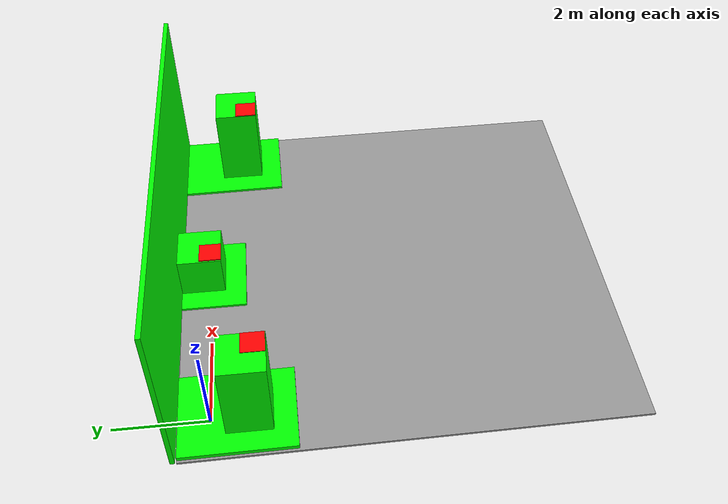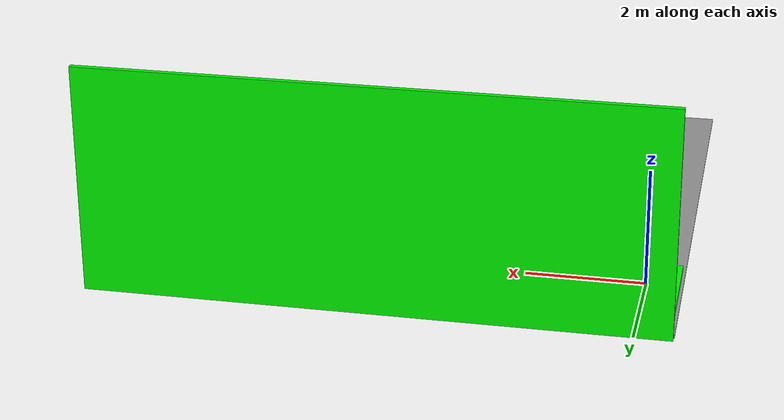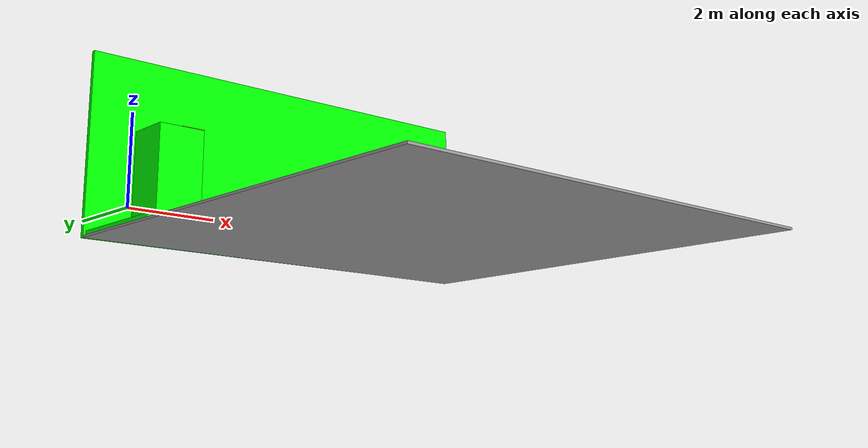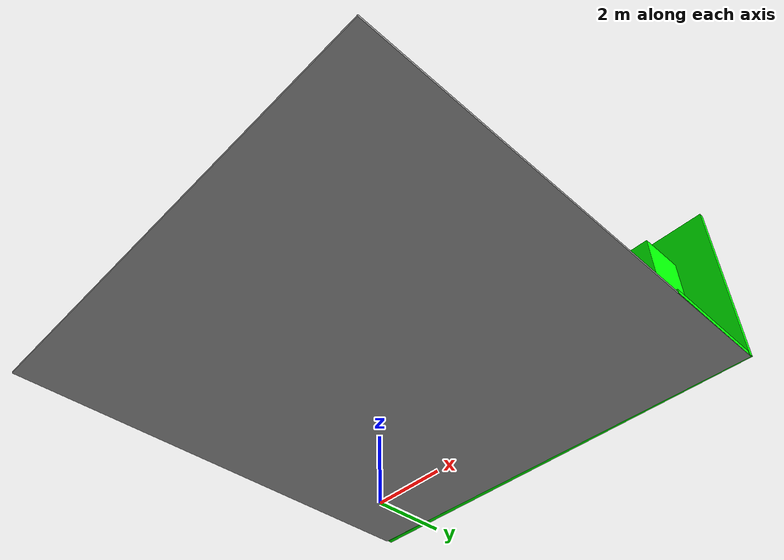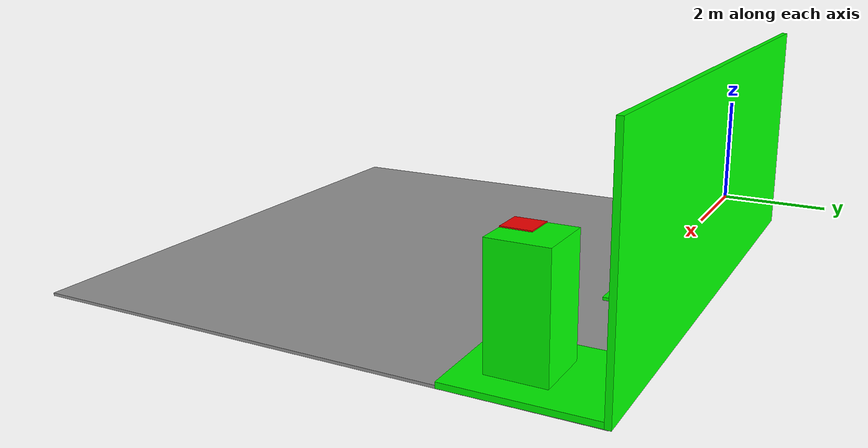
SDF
<?xml version='1.0'?>
<sdf version='1.7'>
  <model name='ABC'>
    <link name='link'>
      <inertial>
        <mass>1</mass>
        <inertia>
          <ixx>0.166667</ixx>
          <ixy>0</ixy>
          <ixz>0</ixz>
          <iyy>0.166667</iyy>
          <iyz>0</iyz>
          <izz>0.166667</izz>
        </inertia>
        <pose>0 0 0 0 -0 0</pose>
      </inertial>
      <self_collide>0</self_collide>
      <enable_wind>0</enable_wind>
      <kinematic>0</kinematic>
      <pose>0.501756 -0.490715 -0.481377 0 -0 0.009708</pose>
      <gravity>0</gravity>
      <visual name='visual'>
        <geometry>
          <box>
            <size>2 2.5 0.1</size>
          </box>
        </geometry>
        <material>
          <script>
            <name>Gazebo/Grey</name>
            <uri>file://media/materials/scripts/gazebo.material</uri>
          </script>
          <shader type='pixel'>
            <normal_map>__default__</normal_map>
          </shader>
          <ambient>0 1 0 1</ambient>
          <diffuse>0 1 0 1</diffuse>
          <specular>0 1 0 1</specular>
          <emissive>0 1 0 1</emissive>
        </material>
        <pose>0 0 0 0 -0 0</pose>
        <transparency>0</transparency>
        <cast_shadows>1</cast_shadows>
      </visual>
    </link>
    <link name='link_clone'>
      <inertial>
        <mass>1</mass>
        <inertia>
          <ixx>0.166667</ixx>
          <ixy>0</ixy>
          <ixz>0</ixz>
          <iyy>0.166667</iyy>
          <iyz>0</iyz>
          <izz>0.166667</izz>
        </inertia>
        <pose>0 0 0 0 -0 0</pose>
      </inertial>
      <self_collide>0</self_collide>
      <enable_wind>0</enable_wind>
      <kinematic>0</kinematic>
      <pose>0.464724 -0.746721 0.530209 0 -0 0</pose>
      <gravity>0</gravity>
      <visual name='visual'>
        <geometry>
          <box>
            <size>1 1 2</size>
          </box>
        </geometry>
        <material>
          <script>
            <name>Gazebo/Grey</name>
            <uri>file://media/materials/scripts/gazebo.material</uri>
          </script>
          <shader type='pixel'>
            <normal_map>__default__</normal_map>
          </shader>
          <ambient>0 1 0 1</ambient>
          <diffuse>0 1 0 1</diffuse>
          <specular>0 1 0 1</specular>
          <emissive>0 1 0 1</emissive>
        </material>
        <pose>0 0 0 0 -0 0</pose>
        <transparency>0</transparency>
        <cast_shadows>1</cast_shadows>
      </visual>
    </link>
    <link name='link_clone_0'>
      <inertial>
        <mass>1</mass>
        <inertia>
          <ixx>0.166667</ixx>
          <ixy>0</ixy>
          <ixz>0</ixz>
          <iyy>0.166667</iyy>
          <iyz>0</iyz>
          <izz>0.166667</izz>
        </inertia>
        <pose>0 0 0 0 -0 0</pose>
      </inertial>
      <self_collide>0</self_collide>
      <enable_wind>0</enable_wind>
      <kinematic>0</kinematic>
      <pose>4.48643 -4.20216 -0.554871 0 -0 0.009708</pose>
      <gravity>0</gravity>
      <visual name='visual'>
        <geometry>
          <box>
            <size>10 10 0.05</size>
          </box>
        </geometry>
        <material>
          <script>
            <name>Gazebo/Grey</name>
            <uri>file://media/materials/scripts/gazebo.material</uri>
          </script>
          <shader type='pixel'>
            <normal_map>__default__</normal_map>
          </shader>
          <ambient>0.3 0.3 0.3 1</ambient>
          <diffuse>0.3 0.3 0.3 1</diffuse>
          <specular>0.3 0.3 0.3 1</specular>
          <emissive>0.3 0.3 0.3 1</emissive>
        </material>
        <pose>0 0 0 0 -0 0</pose>
        <transparency>0</transparency>
        <cast_shadows>1</cast_shadows>
      </visual>
    </link>
    <link name='link_clone_clone'>
      <inertial>
        <mass>1</mass>
        <inertia>
          <ixx>0.166667</ixx>
          <ixy>0</ixy>
          <ixz>0</ixz>
          <iyy>0.166667</iyy>
          <iyz>0</iyz>
          <izz>0.166667</izz>
        </inertia>
        <pose>0 0 0 0 -0 0</pose>
      </inertial>
      <self_collide>0</self_collide>
      <enable_wind>0</enable_wind>
      <kinematic>0</kinematic>
      <pose>4.4894 0.039701 -0.525972 0 0 -3.13825</pose>
      <gravity>0</gravity>
      <visual name='visual'>
        <geometry>
          <box>
            <size>2 1.5 0.1</size>
          </box>
        </geometry>
        <material>
          <script>
            <name>Gazebo/Grey</name>
            <uri>file://media/materials/scripts/gazebo.material</uri>
          </script>
          <shader type='pixel'>
            <normal_map>__default__</normal_map>
          </shader>
          <ambient>0 1 0 1</ambient>
          <diffuse>0 1 0 1</diffuse>
          <specular>0 1 0 1</specular>
          <emissive>0 1 0 1</emissive>
        </material>
        <pose>0 0 0 0 -0 0</pose>
        <transparency>0</transparency>
        <cast_shadows>1</cast_shadows>
      </visual>
    </link>
    <link name='link_clone_clone_0'>
      <inertial>
        <mass>1</mass>
        <inertia>
          <ixx>0.166667</ixx>
          <ixy>0</ixy>
          <ixz>0</ixz>
          <iyy>0.166667</iyy>
          <iyz>0</iyz>
          <izz>0.166667</izz>
        </inertia>
        <pose>0 0 0 0 -0 0</pose>
      </inertial>
      <self_collide>0</self_collide>
      <enable_wind>0</enable_wind>
      <kinematic>0</kinematic>
      <pose>8.45528 -0.414778 -0.521977 0 0 -1.55734</pose>
      <gravity>0</gravity>
      <visual name='visual'>
        <geometry>
          <box>
            <size>2.5 2 0.1</size>
          </box>
        </geometry>
        <material>
          <script>
            <name>Gazebo/Grey</name>
            <uri>file://media/materials/scripts/gazebo.material</uri>
          </script>
          <shader type='pixel'>
            <normal_map>__default__</normal_map>
          </shader>
          <ambient>0 1 0 1</ambient>
          <diffuse>0 1 0 1</diffuse>
          <specular>0 1 0 1</specular>
          <emissive>0 1 0 1</emissive>
        </material>
        <pose>0 0 0 0 -0 0</pose>
        <transparency>0</transparency>
        <cast_shadows>1</cast_shadows>
      </visual>
    </link>
    <link name='link_clone_clone_1'>
      <inertial>
        <mass>1</mass>
        <inertia>
          <ixx>0.166667</ixx>
          <ixy>0</ixy>
          <ixz>0</ixz>
          <iyy>0.166667</iyy>
          <iyz>0</iyz>
          <izz>0.166667</izz>
        </inertia>
        <pose>0 0 0 0 -0 0</pose>
      </inertial>
      <self_collide>0</self_collide>
      <enable_wind>0</enable_wind>
      <kinematic>0</kinematic>
      <pose>4.45058 0.836556 1.43228 0 -0 0</pose>
      <gravity>0</gravity>
      <visual name='visual'>
        <geometry>
          <box>
            <size>10 0.1 4</size>
          </box>
        </geometry>
        <material>
          <script>
            <name>Gazebo/Grey</name>
            <uri>file://media/materials/scripts/gazebo.material</uri>
          </script>
          <shader type='pixel'>
            <normal_map>__default__</normal_map>
          </shader>
          <ambient>0 1 0 1</ambient>
          <diffuse>0 1 0 1</diffuse>
          <specular>0 1 0 1</specular>
          <emissive>0 1 0 1</emissive>
        </material>
        <pose>0 0 0 0 -0 0</pose>
        <transparency>0</transparency>
        <cast_shadows>1</cast_shadows>
      </visual>
    </link>
    <link name='link_clone_clone_2'>
      <inertial>
        <mass>1</mass>
        <inertia>
          <ixx>0.166667</ixx>
          <ixy>0</ixy>
          <ixz>0</ixz>
          <iyy>0.166667</iyy>
          <iyz>0</iyz>
          <izz>0.166667</izz>
        </inertia>
        <pose>0 0 0 0 -0 0</pose>
      </inertial>
      <self_collide>0</self_collide>
      <enable_wind>0</enable_wind>
      <kinematic>0</kinematic>
      <pose>4.46769 0.278083 0.030316 0 -0 0</pose>
      <gravity>0</gravity>
      <visual name='visual'>
        <geometry>
          <box>
            <size>1 1 1</size>
          </box>
        </geometry>
        <material>
          <script>
            <name>Gazebo/Grey</name>
            <uri>file://media/materials/scripts/gazebo.material</uri>
          </script>
          <shader type='pixel'>
            <normal_map>__default__</normal_map>
          </shader>
          <ambient>0 1 0 1</ambient>
          <diffuse>0 1 0 1</diffuse>
          <specular>0 1 0 1</specular>
          <emissive>0 1 0 1</emissive>
        </material>
        <pose>0 0 0 0 -0 0</pose>
        <transparency>0</transparency>
        <cast_shadows>1</cast_shadows>
      </visual>
    </link>
    <link name='link_clone_clone_3'>
      <inertial>
        <mass>1</mass>
        <inertia>
          <ixx>0.166667</ixx>
          <ixy>0</ixy>
          <ixz>0</ixz>
          <iyy>0.166667</iyy>
          <iyz>0</iyz>
          <izz>0.166667</izz>
        </inertia>
        <pose>0 0 0 0 -0 0</pose>
      </inertial>
      <self_collide>0</self_collide>
      <enable_wind>0</enable_wind>
      <kinematic>0</kinematic>
      <pose>8.4761 -0.674473 0.530209 0 -0 0</pose>
      <gravity>0</gravity>
      <visual name='visual'>
        <geometry>
          <box>
            <size>1 1 2</size>
          </box>
        </geometry>
        <material>
          <script>
            <name>Gazebo/Grey</name>
            <uri>file://media/materials/scripts/gazebo.material</uri>
          </script>
          <shader type='pixel'>
            <normal_map>__default__</normal_map>
          </shader>
          <ambient>0 1 0 1</ambient>
          <diffuse>0 1 0 1</diffuse>
          <specular>0 1 0 1</specular>
          <emissive>0 1 0 1</emissive>
        </material>
        <pose>0 0 0 0 -0 0</pose>
        <transparency>0</transparency>
        <cast_shadows>1</cast_shadows>
      </visual>
    </link>
    <link name='link_clone_clone_4'>
      <inertial>
        <mass>1</mass>
        <inertia>
          <ixx>0.166667</ixx>
          <ixy>0</ixy>
          <ixz>0</ixz>
          <iyy>0.166667</iyy>
          <iyz>0</iyz>
          <izz>0.166667</izz>
        </inertia>
        <pose>0 0 0 0 -0 0</pose>
      </inertial>
      <self_collide>0</self_collide>
      <enable_wind>0</enable_wind>
      <kinematic>0</kinematic>
      <pose>8.23375 -0.921291 1.53416 0 -0 0</pose>
      <gravity>0</gravity>
      <visual name='visual'>
        <geometry>
          <box>
            <size>0.5 0.5 0.03</size>
          </box>
        </geometry>
        <material>
          <script>
            <name>Gazebo/Grey</name>
            <uri>file://media/materials/scripts/gazebo.material</uri>
          </script>
          <shader type='pixel'>
            <normal_map>__default__</normal_map>
          </shader>
          <ambient>1 0 0 1</ambient>
          <diffuse>1 0 0 1</diffuse>
          <specular>1 0 0 1</specular>
          <emissive>1 0 0 1</emissive>
        </material>
        <pose>0 0 0 0 -0 0</pose>
        <transparency>0</transparency>
        <cast_shadows>1</cast_shadows>
      </visual>
    </link>
    <link name='link_clone_clone_4_clone'>
      <inertial>
        <mass>1</mass>
        <inertia>
          <ixx>0.166667</ixx>
          <ixy>0</ixy>
          <ixz>0</ixz>
          <iyy>0.166667</iyy>
          <iyz>0</iyz>
          <izz>0.166667</izz>
        </inertia>
        <pose>0 0 0 0 -0 0</pose>
      </inertial>
      <self_collide>0</self_collide>
      <enable_wind>0</enable_wind>
      <kinematic>0</kinematic>
      <pose>0.7157 -0.988293 1.52576 0 -0 0</pose>
      <gravity>0</gravity>
      <visual name='visual'>
        <geometry>
          <box>
            <size>0.5 0.5 0.03</size>
          </box>
        </geometry>
        <material>
          <script>
            <name>Gazebo/Grey</name>
            <uri>file://media/materials/scripts/gazebo.material</uri>
          </script>
          <shader type='pixel'>
            <normal_map>__default__</normal_map>
          </shader>
          <ambient>1 0 0 1</ambient>
          <diffuse>1 0 0 1</diffuse>
          <specular>1 0 0 1</specular>
          <emissive>1 0 0 1</emissive>
        </material>
        <pose>0 0 0 0 -0 0</pose>
        <transparency>0</transparency>
        <cast_shadows>1</cast_shadows>
      </visual>
    </link>
    <link name='link_clone_clone_4_clone_0'>
      <inertial>
        <mass>1</mass>
        <inertia>
          <ixx>0.166667</ixx>
          <ixy>0</ixy>
          <ixz>0</ixz>
          <iyy>0.166667</iyy>
          <iyz>0</iyz>
          <izz>0.166667</izz>
        </inertia>
        <pose>0 0 0 0 -0 0</pose>
      </inertial>
      <self_collide>0</self_collide>
      <enable_wind>0</enable_wind>
      <kinematic>0</kinematic>
      <pose>4.24679 0.025765 0.545434 0 -0 0</pose>
      <gravity>0</gravity>
      <visual name='visual'>
        <geometry>
          <box>
            <size>0.5 0.5 0.03</size>
          </box>
        </geometry>
        <material>
          <script>
            <name>Gazebo/Grey</name>
            <uri>file://media/materials/scripts/gazebo.material</uri>
          </script>
          <shader type='pixel'>
            <normal_map>__default__</normal_map>
          </shader>
          <ambient>1 0 0 1</ambient>
          <diffuse>1 0 0 1</diffuse>
          <specular>1 0 0 1</specular>
          <emissive>1 0 0 1</emissive>
        </material>
        <pose>0 0 0 0 -0 0</pose>
        <transparency>0</transparency>
        <cast_shadows>1</cast_shadows>
      </visual>
    </link>
    <static>0</static>
    <allow_auto_disable>1</allow_auto_disable>
  </model>
</sdf>
